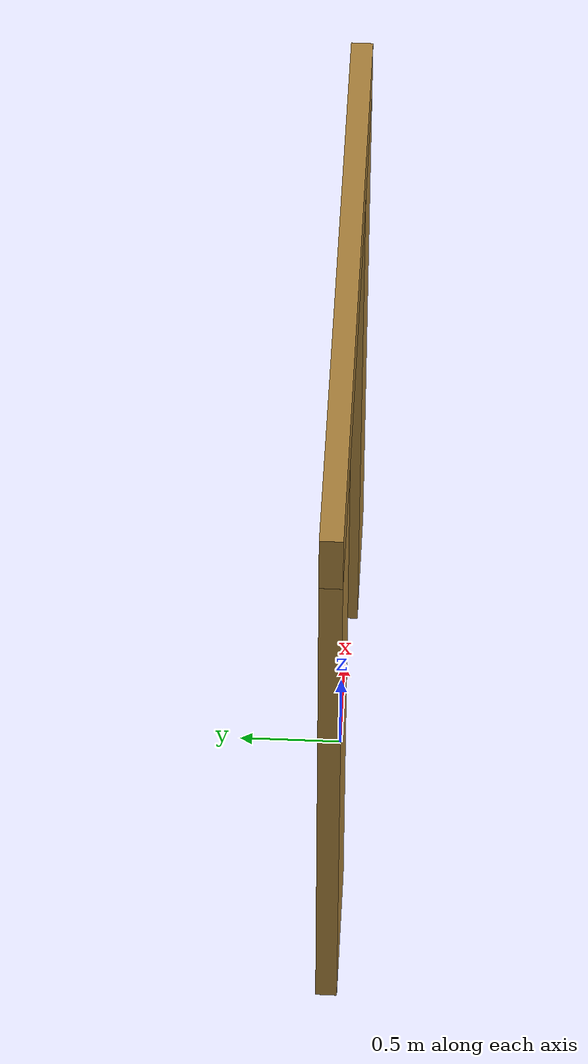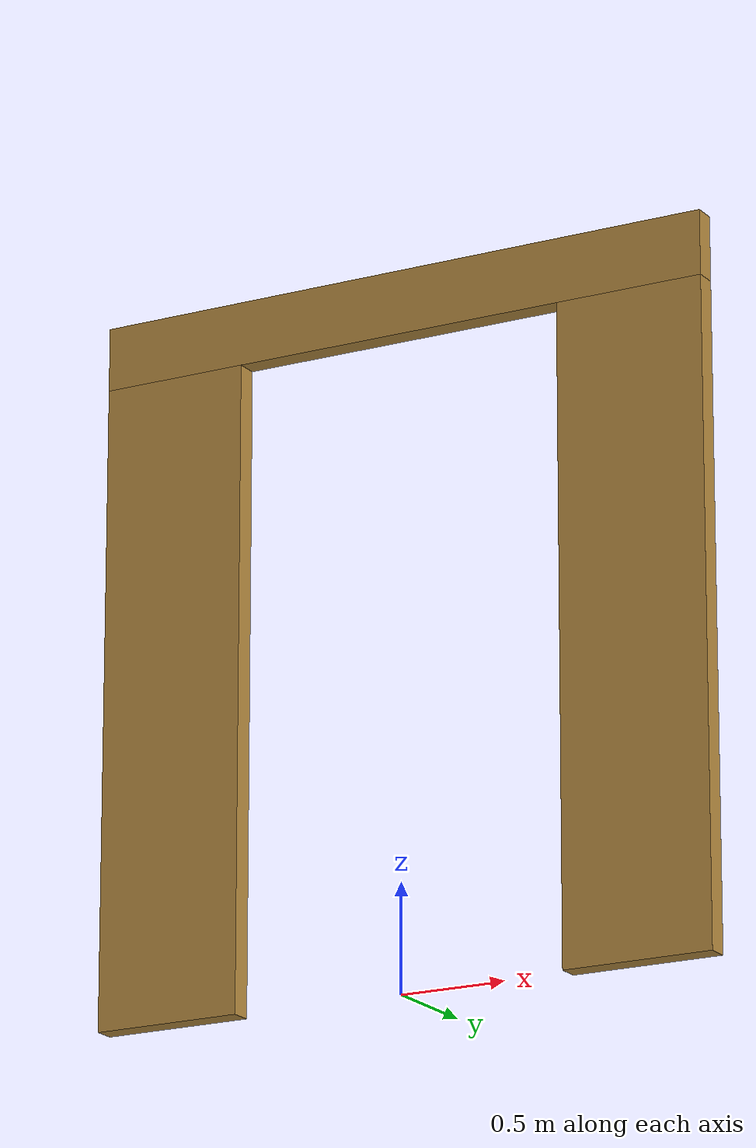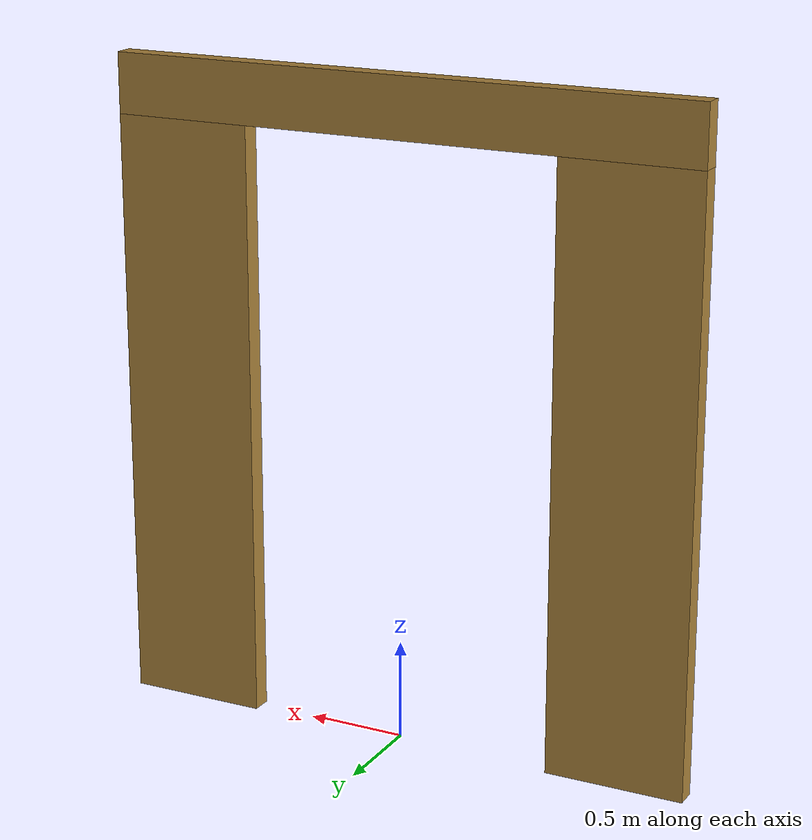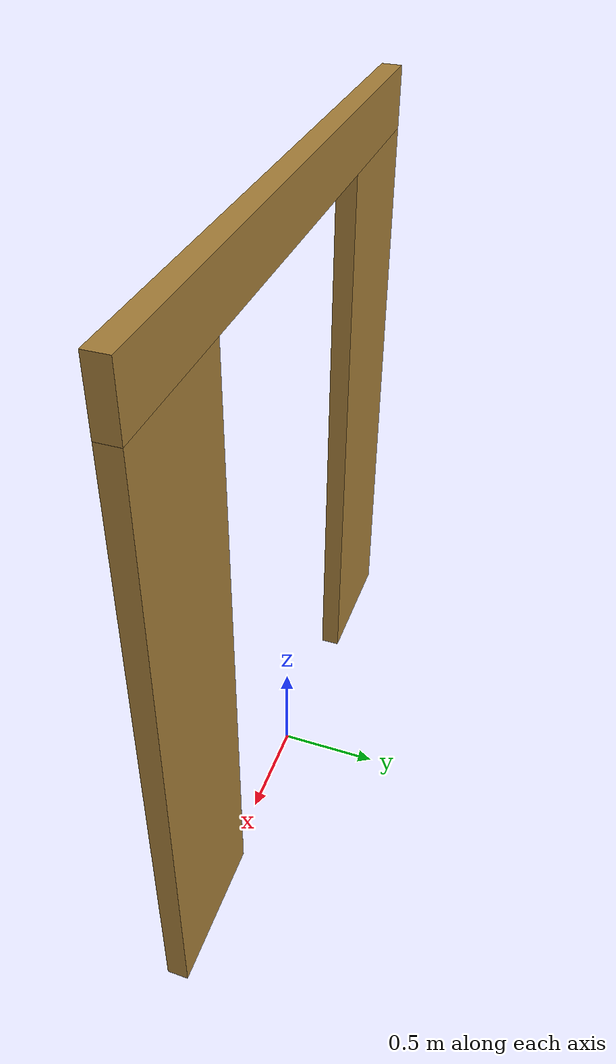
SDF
<?xml version='1.0'?>
<sdf version="1.6">
  <model name="gate_single">
    <static>true</static>
    <link name="link">
      <pose>0 0 0 0 0 0</pose>
      <visual name="top"><pose>0 0 3.15 0 0 0</pose>
        <geometry><box><size>3.0 0.1 0.3</size></box></geometry>
        <material><ambient>0.655 0.499 0.226 1</ambient><diffuse>0.655 0.499 0.226 1</diffuse><emissive>0.655 0.499 0.226 1</emissive></material>
      </visual>
      <collision name="top_col"><pose>0 0 3.15 0 0 0</pose>
        <geometry><box><size>3.0 0.1 0.3</size></box></geometry></collision>
      <visual name="left"><pose>-1.15 0 1.5 0 0 0</pose>
        <geometry><box><size>0.7 0.1 3.0</size></box></geometry>
        <material><ambient>0.655 0.499 0.226 1</ambient><diffuse>0.655 0.499 0.226 1</diffuse><emissive>0.655 0.499 0.226 1</emissive></material>
      </visual>
      <collision name="left_col"><pose>-1.15 0 1.5 0 0 0</pose>
        <geometry><box><size>0.7 0.1 3.0</size></box></geometry></collision>
      <visual name="right"><pose>1.15 0 1.5 0 0 0</pose>
        <geometry><box><size>0.7 0.1 3.0</size></box></geometry>
        <material><ambient>0.655 0.499 0.226 1</ambient><diffuse>0.655 0.499 0.226 1</diffuse><emissive>0.655 0.499 0.226 1</emissive></material>
      </visual>
      <collision name="right_col"><pose>1.15 0 1.5 0 0 0</pose>
        <geometry><box><size>0.7 0.1 3.0</size></box></geometry></collision>
    </link>
  </model>
</sdf>
